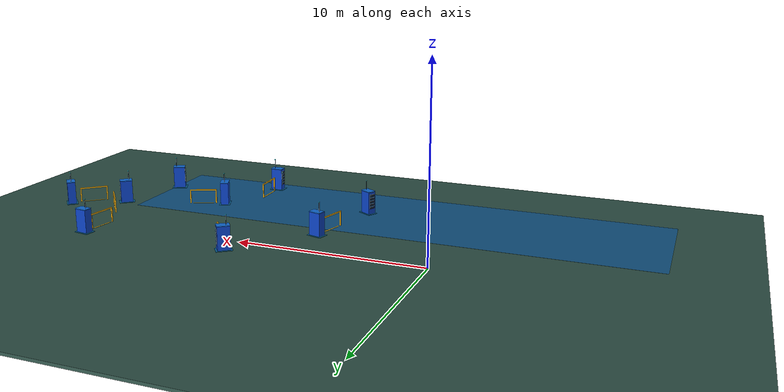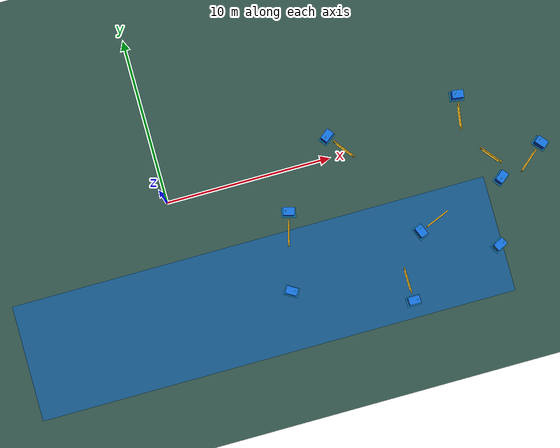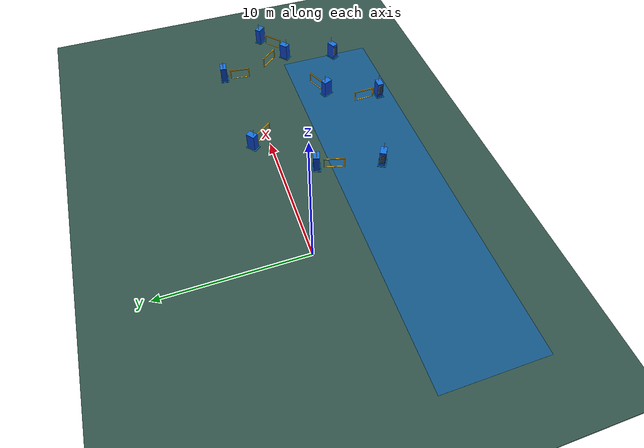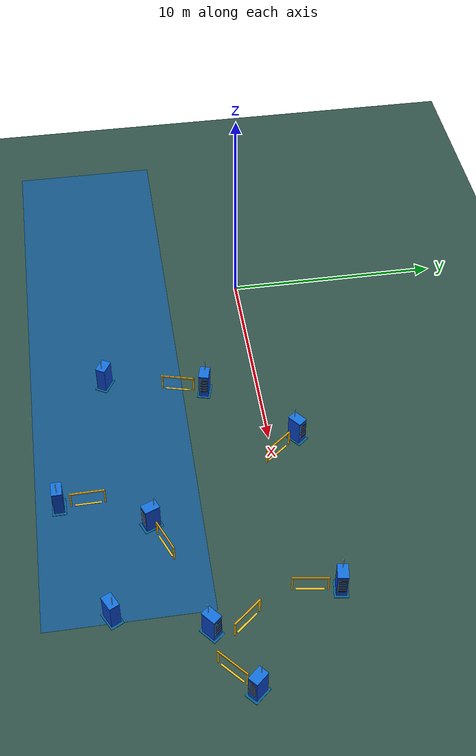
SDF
<sdf version="1.9">
 <world name="monaco">
  <model name="ground">
   <static>true</static>
   <link name="body">
    <visual name="ground">
     <pose>0 0 -0.08 0 0 0</pose>
     <geometry><box><size>100 100 0.15</size></box></geometry>
     <material><ambient>0.20 0.34 0.30 1</ambient><diffuse>0.20 0.34 0.30 1</diffuse></material>
    </visual>
    <collision name="ground_collision">
     <pose>0 0 -0.08 0 0 0</pose>
     <geometry><box><size>100 100 0.15</size></box></geometry>
    </collision>
   </link>
  </model>
  <model name="harbour">
   <static>true</static>
   <pose>4 -7 0 0 0 0</pose>
   <link name="body">
    <visual name="water">
     <pose>0 0 -0.002 0 0 0</pose>
     <geometry><box><size>29 7 0.004</size></box></geometry>
     <material><ambient>0.08 0.35 0.55 1</ambient><diffuse>0.08 0.35 0.55 1</diffuse></material>
    </visual>
   </link>
  </model>
  <model name="checkpoint_03">
   <static>true</static>
   <pose>6.454940298437448 -3.682188998557269 0 0 0 -0.2629336368618341</pose>
   <link name="body">
    <visual name="stripe">
     <pose>0 0 0.016 0 0 0</pose>
     <geometry><box><size>0.08 1.17 0.008</size></box></geometry>
     <material><ambient>1 0.78 0.15 1</ambient><diffuse>1 0.78 0.15 1</diffuse></material>
    </visual>
    <visual name="post_-1">
     <pose>0 -0.73 0.38 0 0 0</pose>
     <geometry><box><size>0.06 0.06 0.76</size></box></geometry>
     <material><ambient>1 0.72 0.06 1</ambient><diffuse>1 0.72 0.06 1</diffuse></material>
    </visual>
    <visual name="post_1">
     <pose>0 0.73 0.38 0 0 0</pose>
     <geometry><box><size>0.06 0.06 0.76</size></box></geometry>
     <material><ambient>1 0.72 0.06 1</ambient><diffuse>1 0.72 0.06 1</diffuse></material>
    </visual>
    <visual name="overhead">
     <pose>0 0 0.79 0 0 0</pose>
     <geometry><box><size>0.06 1.52 0.06</size></box></geometry>
     <material><ambient>1 0.72 0.06 1</ambient><diffuse>1 0.72 0.06 1</diffuse></material>
    </visual>
   </link>
  </model>
  <model name="checkpoint_04">
   <static>true</static>
   <pose>10.935548704453556 0.25721683921350696 0 0 0 0.6659692373791293</pose>
   <link name="body">
    <visual name="stripe">
     <pose>0 0 0.016 0 0 0</pose>
     <geometry><box><size>0.08 1.17 0.008</size></box></geometry>
     <material><ambient>1 0.78 0.15 1</ambient><diffuse>1 0.78 0.15 1</diffuse></material>
    </visual>
    <visual name="post_-1">
     <pose>0 -0.73 0.38 0 0 0</pose>
     <geometry><box><size>0.06 0.06 0.76</size></box></geometry>
     <material><ambient>1 0.72 0.06 1</ambient><diffuse>1 0.72 0.06 1</diffuse></material>
    </visual>
    <visual name="post_1">
     <pose>0 0.73 0.38 0 0 0</pose>
     <geometry><box><size>0.06 0.06 0.76</size></box></geometry>
     <material><ambient>1 0.72 0.06 1</ambient><diffuse>1 0.72 0.06 1</diffuse></material>
    </visual>
    <visual name="overhead">
     <pose>0 0 0.79 0 0 0</pose>
     <geometry><box><size>0.06 1.52 0.06</size></box></geometry>
     <material><ambient>1 0.72 0.06 1</ambient><diffuse>1 0.72 0.06 1</diffuse></material>
    </visual>
   </link>
  </model>
  <model name="checkpoint_05">
   <static>true</static>
   <pose>18.07998499091733 0.31344347166392694 0 0 0 -0.14937406840823475</pose>
   <link name="body">
    <visual name="stripe">
     <pose>0 0 0.016 0 0 0</pose>
     <geometry><box><size>0.08 1.17 0.008</size></box></geometry>
     <material><ambient>1 0.78 0.15 1</ambient><diffuse>1 0.78 0.15 1</diffuse></material>
    </visual>
    <visual name="post_-1">
     <pose>0 -0.73 0.38 0 0 0</pose>
     <geometry><box><size>0.06 0.06 0.76</size></box></geometry>
     <material><ambient>1 0.72 0.06 1</ambient><diffuse>1 0.72 0.06 1</diffuse></material>
    </visual>
    <visual name="post_1">
     <pose>0 0.73 0.38 0 0 0</pose>
     <geometry><box><size>0.06 0.06 0.76</size></box></geometry>
     <material><ambient>1 0.72 0.06 1</ambient><diffuse>1 0.72 0.06 1</diffuse></material>
    </visual>
    <visual name="overhead">
     <pose>0 0 0.79 0 0 0</pose>
     <geometry><box><size>0.06 1.52 0.06</size></box></geometry>
     <material><ambient>1 0.72 0.06 1</ambient><diffuse>1 0.72 0.06 1</diffuse></material>
    </visual>
   </link>
  </model>
  <model name="checkpoint_06">
   <static>true</static>
   <pose>15.15773182204439 -5.211876964290147 0 0 0 -1.181919884196147</pose>
   <link name="body">
    <visual name="stripe">
     <pose>0 0 0.016 0 0 0</pose>
     <geometry><box><size>0.08 1.17 0.008</size></box></geometry>
     <material><ambient>1 0.78 0.15 1</ambient><diffuse>1 0.78 0.15 1</diffuse></material>
    </visual>
    <visual name="post_-1">
     <pose>0 -0.73 0.38 0 0 0</pose>
     <geometry><box><size>0.06 0.06 0.76</size></box></geometry>
     <material><ambient>1 0.72 0.06 1</ambient><diffuse>1 0.72 0.06 1</diffuse></material>
    </visual>
    <visual name="post_1">
     <pose>0 0.73 0.38 0 0 0</pose>
     <geometry><box><size>0.06 0.06 0.76</size></box></geometry>
     <material><ambient>1 0.72 0.06 1</ambient><diffuse>1 0.72 0.06 1</diffuse></material>
    </visual>
    <visual name="overhead">
     <pose>0 0 0.79 0 0 0</pose>
     <geometry><box><size>0.06 1.52 0.06</size></box></geometry>
     <material><ambient>1 0.72 0.06 1</ambient><diffuse>1 0.72 0.06 1</diffuse></material>
    </visual>
   </link>
  </model>
  <model name="checkpoint_07">
   <static>true</static>
   <pose>19.249690984011426 -2.4214309543435344 0 0 0 0.6889243882148643</pose>
   <link name="body">
    <visual name="stripe">
     <pose>0 0 0.016 0 0 0</pose>
     <geometry><box><size>0.08 1.17 0.008</size></box></geometry>
     <material><ambient>1 0.78 0.15 1</ambient><diffuse>1 0.78 0.15 1</diffuse></material>
    </visual>
    <visual name="post_-1">
     <pose>0 -0.73 0.38 0 0 0</pose>
     <geometry><box><size>0.06 0.06 0.76</size></box></geometry>
     <material><ambient>1 0.72 0.06 1</ambient><diffuse>1 0.72 0.06 1</diffuse></material>
    </visual>
    <visual name="post_1">
     <pose>0 0.73 0.38 0 0 0</pose>
     <geometry><box><size>0.06 0.06 0.76</size></box></geometry>
     <material><ambient>1 0.72 0.06 1</ambient><diffuse>1 0.72 0.06 1</diffuse></material>
    </visual>
    <visual name="overhead">
     <pose>0 0 0.79 0 0 0</pose>
     <geometry><box><size>0.06 1.52 0.06</size></box></geometry>
     <material><ambient>1 0.72 0.06 1</ambient><diffuse>1 0.72 0.06 1</diffuse></material>
    </visual>
   </link>
  </model>
  <model name="checkpoint_08">
   <static>true</static>
   <pose>21.326041155660878 -3.318374200235601 0 0 0 -0.8515374187715115</pose>
   <link name="body">
    <visual name="stripe">
     <pose>0 0 0.016 0 0 0</pose>
     <geometry><box><size>0.08 1.17 0.008</size></box></geometry>
     <material><ambient>1 0.78 0.15 1</ambient><diffuse>1 0.78 0.15 1</diffuse></material>
    </visual>
    <visual name="post_-1">
     <pose>0 -0.73 0.38 0 0 0</pose>
     <geometry><box><size>0.06 0.06 0.76</size></box></geometry>
     <material><ambient>1 0.72 0.06 1</ambient><diffuse>1 0.72 0.06 1</diffuse></material>
    </visual>
    <visual name="post_1">
     <pose>0 0.73 0.38 0 0 0</pose>
     <geometry><box><size>0.06 0.06 0.76</size></box></geometry>
     <material><ambient>1 0.72 0.06 1</ambient><diffuse>1 0.72 0.06 1</diffuse></material>
    </visual>
    <visual name="overhead">
     <pose>0 0 0.79 0 0 0</pose>
     <geometry><box><size>0.06 1.52 0.06</size></box></geometry>
     <material><ambient>1 0.72 0.06 1</ambient><diffuse>1 0.72 0.06 1</diffuse></material>
    </visual>
   </link>
  </model>
  <model name="checkpoint_09">
   <static>true</static>
   <pose>12.488786444975142 -8.246013476294056 0 0 0 -3.127607551424901</pose>
   <link name="body">
    <visual name="stripe">
     <pose>0 0 0.016 0 0 0</pose>
     <geometry><box><size>0.08 1.17 0.008</size></box></geometry>
     <material><ambient>1 0.78 0.15 1</ambient><diffuse>1 0.78 0.15 1</diffuse></material>
    </visual>
    <visual name="post_-1">
     <pose>0 -0.73 0.38 0 0 0</pose>
     <geometry><box><size>0.06 0.06 0.76</size></box></geometry>
     <material><ambient>1 0.72 0.06 1</ambient><diffuse>1 0.72 0.06 1</diffuse></material>
    </visual>
    <visual name="post_1">
     <pose>0 0.73 0.38 0 0 0</pose>
     <geometry><box><size>0.06 0.06 0.76</size></box></geometry>
     <material><ambient>1 0.72 0.06 1</ambient><diffuse>1 0.72 0.06 1</diffuse></material>
    </visual>
    <visual name="overhead">
     <pose>0 0 0.79 0 0 0</pose>
     <geometry><box><size>0.06 1.52 0.06</size></box></geometry>
     <material><ambient>1 0.72 0.06 1</ambient><diffuse>1 0.72 0.06 1</diffuse></material>
    </visual>
   </link>
  </model>
  <model name="edge_03">
   <static>true</static>
   <pose>6.779833396990761 -2.475149448868682 0 0 0 -0.2629336368618341</pose>
   <link name="body">
    <collision name="chassis_collision">
     <pose>0 0 0.14 0 0 0</pose>
     <geometry><box><size>0.64 0.32 0.13</size></box></geometry>
    </collision>
    <visual name="parking_bay">
     <pose>0 0 0.012 0 0 0</pose>
     <geometry><box><size>0.86 0.60 0.025</size></box></geometry>
     <material><ambient>0.04 0.40 0.60 1</ambient><diffuse>0.04 0.40 0.60 1</diffuse></material>
    </visual>
    <visual name="server_cabinet">
     <pose>0 0 0.65 0 0 0</pose>
     <geometry><box><size>0.66 0.44 1.25</size></box></geometry>
     <material><ambient>0.035 0.24 0.72 1</ambient><diffuse>0.035 0.24 0.72 1</diffuse></material>
    </visual>
    <visual name="cabinet_top">
     <pose>0 0 1.285 0 0 0</pose>
     <geometry><box><size>0.68 0.46 0.035</size></box></geometry>
     <material><ambient>0.08 0.46 0.90 1</ambient><diffuse>0.08 0.46 0.90 1</diffuse></material>
    </visual>
    <visual name="front_panel">
     <pose>0.337 0 0.73 0 0 0</pose>
     <geometry><box><size>0.014 0.34 0.82</size></box></geometry>
     <material><ambient>0.025 0.075 0.14 1</ambient><diffuse>0.025 0.075 0.14 1</diffuse></material>
    </visual>
    <visual name="rack_slot_0">
     <pose>0.347 0 0.47 0 0 0</pose>
     <geometry><box><size>0.012 0.29 0.045</size></box></geometry>
     <material><ambient>0.11 0.38 0.62 1</ambient><diffuse>0.11 0.38 0.62 1</diffuse></material>
    </visual>
    <visual name="rack_slot_1">
     <pose>0.347 0 0.64 0 0 0</pose>
     <geometry><box><size>0.012 0.29 0.045</size></box></geometry>
     <material><ambient>0.11 0.38 0.62 1</ambient><diffuse>0.11 0.38 0.62 1</diffuse></material>
    </visual>
    <visual name="rack_slot_2">
     <pose>0.347 0 0.81 0 0 0</pose>
     <geometry><box><size>0.012 0.29 0.045</size></box></geometry>
     <material><ambient>0.11 0.38 0.62 1</ambient><diffuse>0.11 0.38 0.62 1</diffuse></material>
    </visual>
    <visual name="rack_slot_3">
     <pose>0.347 0 0.98 0 0 0</pose>
     <geometry><box><size>0.012 0.29 0.045</size></box></geometry>
     <material><ambient>0.11 0.38 0.62 1</ambient><diffuse>0.11 0.38 0.62 1</diffuse></material>
    </visual>
    <visual name="status_light">
     <pose>0.347 -0.10 1.08 0 0 0</pose>
     <geometry><box><size>0.015 0.035 0.035</size></box></geometry>
     <material><ambient>0.10 0.95 0.80 1</ambient><diffuse>0.10 0.95 0.80 1</diffuse></material>
    </visual>
    <visual name="antenna">
     <pose>-0.17 0 1.55 0 0 0</pose>
     <geometry><cylinder><radius>0.018</radius><length>0.5</length></cylinder></geometry>
     <material><ambient>0.05 0.10 0.17 1</ambient><diffuse>0.05 0.10 0.17 1</diffuse></material>
    </visual>
    <visual name="antenna_tip">
     <pose>-0.17 0 1.81 0 0 0</pose>
     <geometry><cylinder><radius>0.027</radius><length>0.035</length></cylinder></geometry>
     <material><ambient>0.12 0.90 0.96 1</ambient><diffuse>0.12 0.90 0.96 1</diffuse></material>
    </visual>
   </link>
  </model>
  <model name="edge_04">
   <static>true</static>
   <pose>10.163271764538656 1.2401147627415203 0 0 0 0.6659692373791293</pose>
   <link name="body">
    <collision name="chassis_collision">
     <pose>0 0 0.14 0 0 0</pose>
     <geometry><box><size>0.64 0.32 0.13</size></box></geometry>
    </collision>
    <visual name="parking_bay">
     <pose>0 0 0.012 0 0 0</pose>
     <geometry><box><size>0.86 0.60 0.025</size></box></geometry>
     <material><ambient>0.04 0.40 0.60 1</ambient><diffuse>0.04 0.40 0.60 1</diffuse></material>
    </visual>
    <visual name="server_cabinet">
     <pose>0 0 0.65 0 0 0</pose>
     <geometry><box><size>0.66 0.44 1.25</size></box></geometry>
     <material><ambient>0.035 0.24 0.72 1</ambient><diffuse>0.035 0.24 0.72 1</diffuse></material>
    </visual>
    <visual name="cabinet_top">
     <pose>0 0 1.285 0 0 0</pose>
     <geometry><box><size>0.68 0.46 0.035</size></box></geometry>
     <material><ambient>0.08 0.46 0.90 1</ambient><diffuse>0.08 0.46 0.90 1</diffuse></material>
    </visual>
    <visual name="front_panel">
     <pose>0.337 0 0.73 0 0 0</pose>
     <geometry><box><size>0.014 0.34 0.82</size></box></geometry>
     <material><ambient>0.025 0.075 0.14 1</ambient><diffuse>0.025 0.075 0.14 1</diffuse></material>
    </visual>
    <visual name="rack_slot_0">
     <pose>0.347 0 0.47 0 0 0</pose>
     <geometry><box><size>0.012 0.29 0.045</size></box></geometry>
     <material><ambient>0.11 0.38 0.62 1</ambient><diffuse>0.11 0.38 0.62 1</diffuse></material>
    </visual>
    <visual name="rack_slot_1">
     <pose>0.347 0 0.64 0 0 0</pose>
     <geometry><box><size>0.012 0.29 0.045</size></box></geometry>
     <material><ambient>0.11 0.38 0.62 1</ambient><diffuse>0.11 0.38 0.62 1</diffuse></material>
    </visual>
    <visual name="rack_slot_2">
     <pose>0.347 0 0.81 0 0 0</pose>
     <geometry><box><size>0.012 0.29 0.045</size></box></geometry>
     <material><ambient>0.11 0.38 0.62 1</ambient><diffuse>0.11 0.38 0.62 1</diffuse></material>
    </visual>
    <visual name="rack_slot_3">
     <pose>0.347 0 0.98 0 0 0</pose>
     <geometry><box><size>0.012 0.29 0.045</size></box></geometry>
     <material><ambient>0.11 0.38 0.62 1</ambient><diffuse>0.11 0.38 0.62 1</diffuse></material>
    </visual>
    <visual name="status_light">
     <pose>0.347 -0.10 1.08 0 0 0</pose>
     <geometry><box><size>0.015 0.035 0.035</size></box></geometry>
     <material><ambient>0.10 0.95 0.80 1</ambient><diffuse>0.10 0.95 0.80 1</diffuse></material>
    </visual>
    <visual name="antenna">
     <pose>-0.17 0 1.55 0 0 0</pose>
     <geometry><cylinder><radius>0.018</radius><length>0.5</length></cylinder></geometry>
     <material><ambient>0.05 0.10 0.17 1</ambient><diffuse>0.05 0.10 0.17 1</diffuse></material>
    </visual>
    <visual name="antenna_tip">
     <pose>-0.17 0 1.81 0 0 0</pose>
     <geometry><cylinder><radius>0.027</radius><length>0.035</length></cylinder></geometry>
     <material><ambient>0.12 0.90 0.96 1</ambient><diffuse>0.12 0.90 0.96 1</diffuse></material>
    </visual>
   </link>
  </model>
  <model name="edge_05">
   <static>true</static>
   <pose>18.266008991148702 1.5495239995171561 0 0 0 -0.14937406840823475</pose>
   <link name="body">
    <collision name="chassis_collision">
     <pose>0 0 0.14 0 0 0</pose>
     <geometry><box><size>0.64 0.32 0.13</size></box></geometry>
    </collision>
    <visual name="parking_bay">
     <pose>0 0 0.012 0 0 0</pose>
     <geometry><box><size>0.86 0.60 0.025</size></box></geometry>
     <material><ambient>0.04 0.40 0.60 1</ambient><diffuse>0.04 0.40 0.60 1</diffuse></material>
    </visual>
    <visual name="server_cabinet">
     <pose>0 0 0.65 0 0 0</pose>
     <geometry><box><size>0.66 0.44 1.25</size></box></geometry>
     <material><ambient>0.035 0.24 0.72 1</ambient><diffuse>0.035 0.24 0.72 1</diffuse></material>
    </visual>
    <visual name="cabinet_top">
     <pose>0 0 1.285 0 0 0</pose>
     <geometry><box><size>0.68 0.46 0.035</size></box></geometry>
     <material><ambient>0.08 0.46 0.90 1</ambient><diffuse>0.08 0.46 0.90 1</diffuse></material>
    </visual>
    <visual name="front_panel">
     <pose>0.337 0 0.73 0 0 0</pose>
     <geometry><box><size>0.014 0.34 0.82</size></box></geometry>
     <material><ambient>0.025 0.075 0.14 1</ambient><diffuse>0.025 0.075 0.14 1</diffuse></material>
    </visual>
    <visual name="rack_slot_0">
     <pose>0.347 0 0.47 0 0 0</pose>
     <geometry><box><size>0.012 0.29 0.045</size></box></geometry>
     <material><ambient>0.11 0.38 0.62 1</ambient><diffuse>0.11 0.38 0.62 1</diffuse></material>
    </visual>
    <visual name="rack_slot_1">
     <pose>0.347 0 0.64 0 0 0</pose>
     <geometry><box><size>0.012 0.29 0.045</size></box></geometry>
     <material><ambient>0.11 0.38 0.62 1</ambient><diffuse>0.11 0.38 0.62 1</diffuse></material>
    </visual>
    <visual name="rack_slot_2">
     <pose>0.347 0 0.81 0 0 0</pose>
     <geometry><box><size>0.012 0.29 0.045</size></box></geometry>
     <material><ambient>0.11 0.38 0.62 1</ambient><diffuse>0.11 0.38 0.62 1</diffuse></material>
    </visual>
    <visual name="rack_slot_3">
     <pose>0.347 0 0.98 0 0 0</pose>
     <geometry><box><size>0.012 0.29 0.045</size></box></geometry>
     <material><ambient>0.11 0.38 0.62 1</ambient><diffuse>0.11 0.38 0.62 1</diffuse></material>
    </visual>
    <visual name="status_light">
     <pose>0.347 -0.10 1.08 0 0 0</pose>
     <geometry><box><size>0.015 0.035 0.035</size></box></geometry>
     <material><ambient>0.10 0.95 0.80 1</ambient><diffuse>0.10 0.95 0.80 1</diffuse></material>
    </visual>
    <visual name="antenna">
     <pose>-0.17 0 1.55 0 0 0</pose>
     <geometry><cylinder><radius>0.018</radius><length>0.5</length></cylinder></geometry>
     <material><ambient>0.05 0.10 0.17 1</ambient><diffuse>0.05 0.10 0.17 1</diffuse></material>
    </visual>
    <visual name="antenna_tip">
     <pose>-0.17 0 1.81 0 0 0</pose>
     <geometry><cylinder><radius>0.027</radius><length>0.035</length></cylinder></geometry>
     <material><ambient>0.12 0.90 0.96 1</ambient><diffuse>0.12 0.90 0.96 1</diffuse></material>
    </visual>
   </link>
  </model>
  <model name="edge_06">
   <static>true</static>
   <pose>14.001062272692813 -5.685813197978624 0 0 0 -1.181919884196147</pose>
   <link name="body">
    <collision name="chassis_collision">
     <pose>0 0 0.14 0 0 0</pose>
     <geometry><box><size>0.64 0.32 0.13</size></box></geometry>
    </collision>
    <visual name="parking_bay">
     <pose>0 0 0.012 0 0 0</pose>
     <geometry><box><size>0.86 0.60 0.025</size></box></geometry>
     <material><ambient>0.04 0.40 0.60 1</ambient><diffuse>0.04 0.40 0.60 1</diffuse></material>
    </visual>
    <visual name="server_cabinet">
     <pose>0 0 0.65 0 0 0</pose>
     <geometry><box><size>0.66 0.44 1.25</size></box></geometry>
     <material><ambient>0.035 0.24 0.72 1</ambient><diffuse>0.035 0.24 0.72 1</diffuse></material>
    </visual>
    <visual name="cabinet_top">
     <pose>0 0 1.285 0 0 0</pose>
     <geometry><box><size>0.68 0.46 0.035</size></box></geometry>
     <material><ambient>0.08 0.46 0.90 1</ambient><diffuse>0.08 0.46 0.90 1</diffuse></material>
    </visual>
    <visual name="front_panel">
     <pose>0.337 0 0.73 0 0 0</pose>
     <geometry><box><size>0.014 0.34 0.82</size></box></geometry>
     <material><ambient>0.025 0.075 0.14 1</ambient><diffuse>0.025 0.075 0.14 1</diffuse></material>
    </visual>
    <visual name="rack_slot_0">
     <pose>0.347 0 0.47 0 0 0</pose>
     <geometry><box><size>0.012 0.29 0.045</size></box></geometry>
     <material><ambient>0.11 0.38 0.62 1</ambient><diffuse>0.11 0.38 0.62 1</diffuse></material>
    </visual>
    <visual name="rack_slot_1">
     <pose>0.347 0 0.64 0 0 0</pose>
     <geometry><box><size>0.012 0.29 0.045</size></box></geometry>
     <material><ambient>0.11 0.38 0.62 1</ambient><diffuse>0.11 0.38 0.62 1</diffuse></material>
    </visual>
    <visual name="rack_slot_2">
     <pose>0.347 0 0.81 0 0 0</pose>
     <geometry><box><size>0.012 0.29 0.045</size></box></geometry>
     <material><ambient>0.11 0.38 0.62 1</ambient><diffuse>0.11 0.38 0.62 1</diffuse></material>
    </visual>
    <visual name="rack_slot_3">
     <pose>0.347 0 0.98 0 0 0</pose>
     <geometry><box><size>0.012 0.29 0.045</size></box></geometry>
     <material><ambient>0.11 0.38 0.62 1</ambient><diffuse>0.11 0.38 0.62 1</diffuse></material>
    </visual>
    <visual name="status_light">
     <pose>0.347 -0.10 1.08 0 0 0</pose>
     <geometry><box><size>0.015 0.035 0.035</size></box></geometry>
     <material><ambient>0.10 0.95 0.80 1</ambient><diffuse>0.10 0.95 0.80 1</diffuse></material>
    </visual>
    <visual name="antenna">
     <pose>-0.17 0 1.55 0 0 0</pose>
     <geometry><cylinder><radius>0.018</radius><length>0.5</length></cylinder></geometry>
     <material><ambient>0.05 0.10 0.17 1</ambient><diffuse>0.05 0.10 0.17 1</diffuse></material>
    </visual>
    <visual name="antenna_tip">
     <pose>-0.17 0 1.81 0 0 0</pose>
     <geometry><cylinder><radius>0.027</radius><length>0.035</length></cylinder></geometry>
     <material><ambient>0.12 0.90 0.96 1</ambient><diffuse>0.12 0.90 0.96 1</diffuse></material>
    </visual>
   </link>
  </model>
  <model name="edge_07">
   <static>true</static>
   <pose>19.465377373375016 -3.8631241885106706 0 0 0 0.6889243882148643</pose>
   <link name="body">
    <collision name="chassis_collision">
     <pose>0 0 0.14 0 0 0</pose>
     <geometry><box><size>0.64 0.32 0.13</size></box></geometry>
    </collision>
    <visual name="parking_bay">
     <pose>0 0 0.012 0 0 0</pose>
     <geometry><box><size>0.86 0.60 0.025</size></box></geometry>
     <material><ambient>0.04 0.40 0.60 1</ambient><diffuse>0.04 0.40 0.60 1</diffuse></material>
    </visual>
    <visual name="server_cabinet">
     <pose>0 0 0.65 0 0 0</pose>
     <geometry><box><size>0.66 0.44 1.25</size></box></geometry>
     <material><ambient>0.035 0.24 0.72 1</ambient><diffuse>0.035 0.24 0.72 1</diffuse></material>
    </visual>
    <visual name="cabinet_top">
     <pose>0 0 1.285 0 0 0</pose>
     <geometry><box><size>0.68 0.46 0.035</size></box></geometry>
     <material><ambient>0.08 0.46 0.90 1</ambient><diffuse>0.08 0.46 0.90 1</diffuse></material>
    </visual>
    <visual name="front_panel">
     <pose>0.337 0 0.73 0 0 0</pose>
     <geometry><box><size>0.014 0.34 0.82</size></box></geometry>
     <material><ambient>0.025 0.075 0.14 1</ambient><diffuse>0.025 0.075 0.14 1</diffuse></material>
    </visual>
    <visual name="rack_slot_0">
     <pose>0.347 0 0.47 0 0 0</pose>
     <geometry><box><size>0.012 0.29 0.045</size></box></geometry>
     <material><ambient>0.11 0.38 0.62 1</ambient><diffuse>0.11 0.38 0.62 1</diffuse></material>
    </visual>
    <visual name="rack_slot_1">
     <pose>0.347 0 0.64 0 0 0</pose>
     <geometry><box><size>0.012 0.29 0.045</size></box></geometry>
     <material><ambient>0.11 0.38 0.62 1</ambient><diffuse>0.11 0.38 0.62 1</diffuse></material>
    </visual>
    <visual name="rack_slot_2">
     <pose>0.347 0 0.81 0 0 0</pose>
     <geometry><box><size>0.012 0.29 0.045</size></box></geometry>
     <material><ambient>0.11 0.38 0.62 1</ambient><diffuse>0.11 0.38 0.62 1</diffuse></material>
    </visual>
    <visual name="rack_slot_3">
     <pose>0.347 0 0.98 0 0 0</pose>
     <geometry><box><size>0.012 0.29 0.045</size></box></geometry>
     <material><ambient>0.11 0.38 0.62 1</ambient><diffuse>0.11 0.38 0.62 1</diffuse></material>
    </visual>
    <visual name="status_light">
     <pose>0.347 -0.10 1.08 0 0 0</pose>
     <geometry><box><size>0.015 0.035 0.035</size></box></geometry>
     <material><ambient>0.10 0.95 0.80 1</ambient><diffuse>0.10 0.95 0.80 1</diffuse></material>
    </visual>
    <visual name="antenna">
     <pose>-0.17 0 1.55 0 0 0</pose>
     <geometry><cylinder><radius>0.018</radius><length>0.5</length></cylinder></geometry>
     <material><ambient>0.05 0.10 0.17 1</ambient><diffuse>0.05 0.10 0.17 1</diffuse></material>
    </visual>
    <visual name="antenna_tip">
     <pose>-0.17 0 1.81 0 0 0</pose>
     <geometry><cylinder><radius>0.027</radius><length>0.035</length></cylinder></geometry>
     <material><ambient>0.12 0.90 0.96 1</ambient><diffuse>0.12 0.90 0.96 1</diffuse></material>
    </visual>
   </link>
  </model>
  <model name="edge_08">
   <static>true</static>
   <pose>22.266408889828018 -2.494840033040724 0 0 0 -0.8515374187715115</pose>
   <link name="body">
    <collision name="chassis_collision">
     <pose>0 0 0.14 0 0 0</pose>
     <geometry><box><size>0.64 0.32 0.13</size></box></geometry>
    </collision>
    <visual name="parking_bay">
     <pose>0 0 0.012 0 0 0</pose>
     <geometry><box><size>0.86 0.60 0.025</size></box></geometry>
     <material><ambient>0.04 0.40 0.60 1</ambient><diffuse>0.04 0.40 0.60 1</diffuse></material>
    </visual>
    <visual name="server_cabinet">
     <pose>0 0 0.65 0 0 0</pose>
     <geometry><box><size>0.66 0.44 1.25</size></box></geometry>
     <material><ambient>0.035 0.24 0.72 1</ambient><diffuse>0.035 0.24 0.72 1</diffuse></material>
    </visual>
    <visual name="cabinet_top">
     <pose>0 0 1.285 0 0 0</pose>
     <geometry><box><size>0.68 0.46 0.035</size></box></geometry>
     <material><ambient>0.08 0.46 0.90 1</ambient><diffuse>0.08 0.46 0.90 1</diffuse></material>
    </visual>
    <visual name="front_panel">
     <pose>0.337 0 0.73 0 0 0</pose>
     <geometry><box><size>0.014 0.34 0.82</size></box></geometry>
     <material><ambient>0.025 0.075 0.14 1</ambient><diffuse>0.025 0.075 0.14 1</diffuse></material>
    </visual>
    <visual name="rack_slot_0">
     <pose>0.347 0 0.47 0 0 0</pose>
     <geometry><box><size>0.012 0.29 0.045</size></box></geometry>
     <material><ambient>0.11 0.38 0.62 1</ambient><diffuse>0.11 0.38 0.62 1</diffuse></material>
    </visual>
    <visual name="rack_slot_1">
     <pose>0.347 0 0.64 0 0 0</pose>
     <geometry><box><size>0.012 0.29 0.045</size></box></geometry>
     <material><ambient>0.11 0.38 0.62 1</ambient><diffuse>0.11 0.38 0.62 1</diffuse></material>
    </visual>
    <visual name="rack_slot_2">
     <pose>0.347 0 0.81 0 0 0</pose>
     <geometry><box><size>0.012 0.29 0.045</size></box></geometry>
     <material><ambient>0.11 0.38 0.62 1</ambient><diffuse>0.11 0.38 0.62 1</diffuse></material>
    </visual>
    <visual name="rack_slot_3">
     <pose>0.347 0 0.98 0 0 0</pose>
     <geometry><box><size>0.012 0.29 0.045</size></box></geometry>
     <material><ambient>0.11 0.38 0.62 1</ambient><diffuse>0.11 0.38 0.62 1</diffuse></material>
    </visual>
    <visual name="status_light">
     <pose>0.347 -0.10 1.08 0 0 0</pose>
     <geometry><box><size>0.015 0.035 0.035</size></box></geometry>
     <material><ambient>0.10 0.95 0.80 1</ambient><diffuse>0.10 0.95 0.80 1</diffuse></material>
    </visual>
    <visual name="antenna">
     <pose>-0.17 0 1.55 0 0 0</pose>
     <geometry><cylinder><radius>0.018</radius><length>0.5</length></cylinder></geometry>
     <material><ambient>0.05 0.10 0.17 1</ambient><diffuse>0.05 0.10 0.17 1</diffuse></material>
    </visual>
    <visual name="antenna_tip">
     <pose>-0.17 0 1.81 0 0 0</pose>
     <geometry><cylinder><radius>0.027</radius><length>0.035</length></cylinder></geometry>
     <material><ambient>0.12 0.90 0.96 1</ambient><diffuse>0.12 0.90 0.96 1</diffuse></material>
    </visual>
   </link>
  </model>
  <model name="edge_09">
   <static>true</static>
   <pose>12.506267252843207 -9.495891238859771 0 0 0 -3.127607551424901</pose>
   <link name="body">
    <collision name="chassis_collision">
     <pose>0 0 0.14 0 0 0</pose>
     <geometry><box><size>0.64 0.32 0.13</size></box></geometry>
    </collision>
    <visual name="parking_bay">
     <pose>0 0 0.012 0 0 0</pose>
     <geometry><box><size>0.86 0.60 0.025</size></box></geometry>
     <material><ambient>0.04 0.40 0.60 1</ambient><diffuse>0.04 0.40 0.60 1</diffuse></material>
    </visual>
    <visual name="server_cabinet">
     <pose>0 0 0.65 0 0 0</pose>
     <geometry><box><size>0.66 0.44 1.25</size></box></geometry>
     <material><ambient>0.035 0.24 0.72 1</ambient><diffuse>0.035 0.24 0.72 1</diffuse></material>
    </visual>
    <visual name="cabinet_top">
     <pose>0 0 1.285 0 0 0</pose>
     <geometry><box><size>0.68 0.46 0.035</size></box></geometry>
     <material><ambient>0.08 0.46 0.90 1</ambient><diffuse>0.08 0.46 0.90 1</diffuse></material>
    </visual>
    <visual name="front_panel">
     <pose>0.337 0 0.73 0 0 0</pose>
     <geometry><box><size>0.014 0.34 0.82</size></box></geometry>
     <material><ambient>0.025 0.075 0.14 1</ambient><diffuse>0.025 0.075 0.14 1</diffuse></material>
    </visual>
    <visual name="rack_slot_0">
     <pose>0.347 0 0.47 0 0 0</pose>
     <geometry><box><size>0.012 0.29 0.045</size></box></geometry>
     <material><ambient>0.11 0.38 0.62 1</ambient><diffuse>0.11 0.38 0.62 1</diffuse></material>
    </visual>
    <visual name="rack_slot_1">
     <pose>0.347 0 0.64 0 0 0</pose>
     <geometry><box><size>0.012 0.29 0.045</size></box></geometry>
     <material><ambient>0.11 0.38 0.62 1</ambient><diffuse>0.11 0.38 0.62 1</diffuse></material>
    </visual>
    <visual name="rack_slot_2">
     <pose>0.347 0 0.81 0 0 0</pose>
     <geometry><box><size>0.012 0.29 0.045</size></box></geometry>
     <material><ambient>0.11 0.38 0.62 1</ambient><diffuse>0.11 0.38 0.62 1</diffuse></material>
    </visual>
    <visual name="rack_slot_3">
     <pose>0.347 0 0.98 0 0 0</pose>
     <geometry><box><size>0.012 0.29 0.045</size></box></geometry>
     <material><ambient>0.11 0.38 0.62 1</ambient><diffuse>0.11 0.38 0.62 1</diffuse></material>
    </visual>
    <visual name="status_light">
     <pose>0.347 -0.10 1.08 0 0 0</pose>
     <geometry><box><size>0.015 0.035 0.035</size></box></geometry>
     <material><ambient>0.10 0.95 0.80 1</ambient><diffuse>0.10 0.95 0.80 1</diffuse></material>
    </visual>
    <visual name="antenna">
     <pose>-0.17 0 1.55 0 0 0</pose>
     <geometry><cylinder><radius>0.018</radius><length>0.5</length></cylinder></geometry>
     <material><ambient>0.05 0.10 0.17 1</ambient><diffuse>0.05 0.10 0.17 1</diffuse></material>
    </visual>
    <visual name="antenna_tip">
     <pose>-0.17 0 1.81 0 0 0</pose>
     <geometry><cylinder><radius>0.027</radius><length>0.035</length></cylinder></geometry>
     <material><ambient>0.12 0.90 0.96 1</ambient><diffuse>0.12 0.90 0.96 1</diffuse></material>
    </visual>
   </link>
  </model>
  <model name="edge_fill_02">
   <static>true</static>
   <pose>18.2811445155 -7.6731197475 0 0 0 -2.67610342604</pose>
   <link name="body">
    <collision name="chassis_collision">
     <pose>0 0 0.14 0 0 0</pose>
     <geometry><box><size>0.64 0.32 0.13</size></box></geometry>
    </collision>
    <visual name="parking_bay">
     <pose>0 0 0.012 0 0 0</pose>
     <geometry><box><size>0.86 0.60 0.025</size></box></geometry>
     <material><ambient>0.04 0.40 0.60 1</ambient><diffuse>0.04 0.40 0.60 1</diffuse></material>
    </visual>
    <visual name="server_cabinet">
     <pose>0 0 0.65 0 0 0</pose>
     <geometry><box><size>0.66 0.44 1.25</size></box></geometry>
     <material><ambient>0.035 0.24 0.72 1</ambient><diffuse>0.035 0.24 0.72 1</diffuse></material>
    </visual>
    <visual name="cabinet_top">
     <pose>0 0 1.285 0 0 0</pose>
     <geometry><box><size>0.68 0.46 0.035</size></box></geometry>
     <material><ambient>0.08 0.46 0.90 1</ambient><diffuse>0.08 0.46 0.90 1</diffuse></material>
    </visual>
    <visual name="front_panel">
     <pose>0.337 0 0.73 0 0 0</pose>
     <geometry><box><size>0.014 0.34 0.82</size></box></geometry>
     <material><ambient>0.025 0.075 0.14 1</ambient><diffuse>0.025 0.075 0.14 1</diffuse></material>
    </visual>
    <visual name="rack_slot_0">
     <pose>0.347 0 0.47 0 0 0</pose>
     <geometry><box><size>0.012 0.29 0.045</size></box></geometry>
     <material><ambient>0.11 0.38 0.62 1</ambient><diffuse>0.11 0.38 0.62 1</diffuse></material>
    </visual>
    <visual name="rack_slot_1">
     <pose>0.347 0 0.64 0 0 0</pose>
     <geometry><box><size>0.012 0.29 0.045</size></box></geometry>
     <material><ambient>0.11 0.38 0.62 1</ambient><diffuse>0.11 0.38 0.62 1</diffuse></material>
    </visual>
    <visual name="rack_slot_2">
     <pose>0.347 0 0.81 0 0 0</pose>
     <geometry><box><size>0.012 0.29 0.045</size></box></geometry>
     <material><ambient>0.11 0.38 0.62 1</ambient><diffuse>0.11 0.38 0.62 1</diffuse></material>
    </visual>
    <visual name="rack_slot_3">
     <pose>0.347 0 0.98 0 0 0</pose>
     <geometry><box><size>0.012 0.29 0.045</size></box></geometry>
     <material><ambient>0.11 0.38 0.62 1</ambient><diffuse>0.11 0.38 0.62 1</diffuse></material>
    </visual>
    <visual name="status_light">
     <pose>0.347 -0.10 1.08 0 0 0</pose>
     <geometry><box><size>0.015 0.035 0.035</size></box></geometry>
     <material><ambient>0.10 0.95 0.80 1</ambient><diffuse>0.10 0.95 0.80 1</diffuse></material>
    </visual>
    <visual name="antenna">
     <pose>-0.17 0 1.55 0 0 0</pose>
     <geometry><cylinder><radius>0.018</radius><length>0.5</length></cylinder></geometry>
     <material><ambient>0.05 0.10 0.17 1</ambient><diffuse>0.05 0.10 0.17 1</diffuse></material>
    </visual>
    <visual name="antenna_tip">
     <pose>-0.17 0 1.81 0 0 0</pose>
     <geometry><cylinder><radius>0.027</radius><length>0.035</length></cylinder></geometry>
     <material><ambient>0.12 0.90 0.96 1</ambient><diffuse>0.12 0.90 0.96 1</diffuse></material>
    </visual>
   </link>
  </model>
  <model name="edge_fill_03">
   <static>true</static>
   <pose>5.70120229891 -7.03769837055 0 0 0 2.60954572797</pose>
   <link name="body">
    <collision name="chassis_collision">
     <pose>0 0 0.14 0 0 0</pose>
     <geometry><box><size>0.64 0.32 0.13</size></box></geometry>
    </collision>
    <visual name="parking_bay">
     <pose>0 0 0.012 0 0 0</pose>
     <geometry><box><size>0.86 0.60 0.025</size></box></geometry>
     <material><ambient>0.04 0.40 0.60 1</ambient><diffuse>0.04 0.40 0.60 1</diffuse></material>
    </visual>
    <visual name="server_cabinet">
     <pose>0 0 0.65 0 0 0</pose>
     <geometry><box><size>0.66 0.44 1.25</size></box></geometry>
     <material><ambient>0.035 0.24 0.72 1</ambient><diffuse>0.035 0.24 0.72 1</diffuse></material>
    </visual>
    <visual name="cabinet_top">
     <pose>0 0 1.285 0 0 0</pose>
     <geometry><box><size>0.68 0.46 0.035</size></box></geometry>
     <material><ambient>0.08 0.46 0.90 1</ambient><diffuse>0.08 0.46 0.90 1</diffuse></material>
    </visual>
    <visual name="front_panel">
     <pose>0.337 0 0.73 0 0 0</pose>
     <geometry><box><size>0.014 0.34 0.82</size></box></geometry>
     <material><ambient>0.025 0.075 0.14 1</ambient><diffuse>0.025 0.075 0.14 1</diffuse></material>
    </visual>
    <visual name="rack_slot_0">
     <pose>0.347 0 0.47 0 0 0</pose>
     <geometry><box><size>0.012 0.29 0.045</size></box></geometry>
     <material><ambient>0.11 0.38 0.62 1</ambient><diffuse>0.11 0.38 0.62 1</diffuse></material>
    </visual>
    <visual name="rack_slot_1">
     <pose>0.347 0 0.64 0 0 0</pose>
     <geometry><box><size>0.012 0.29 0.045</size></box></geometry>
     <material><ambient>0.11 0.38 0.62 1</ambient><diffuse>0.11 0.38 0.62 1</diffuse></material>
    </visual>
    <visual name="rack_slot_2">
     <pose>0.347 0 0.81 0 0 0</pose>
     <geometry><box><size>0.012 0.29 0.045</size></box></geometry>
     <material><ambient>0.11 0.38 0.62 1</ambient><diffuse>0.11 0.38 0.62 1</diffuse></material>
    </visual>
    <visual name="rack_slot_3">
     <pose>0.347 0 0.98 0 0 0</pose>
     <geometry><box><size>0.012 0.29 0.045</size></box></geometry>
     <material><ambient>0.11 0.38 0.62 1</ambient><diffuse>0.11 0.38 0.62 1</diffuse></material>
    </visual>
    <visual name="status_light">
     <pose>0.347 -0.10 1.08 0 0 0</pose>
     <geometry><box><size>0.015 0.035 0.035</size></box></geometry>
     <material><ambient>0.10 0.95 0.80 1</ambient><diffuse>0.10 0.95 0.80 1</diffuse></material>
    </visual>
    <visual name="antenna">
     <pose>-0.17 0 1.55 0 0 0</pose>
     <geometry><cylinder><radius>0.018</radius><length>0.5</length></cylinder></geometry>
     <material><ambient>0.05 0.10 0.17 1</ambient><diffuse>0.05 0.10 0.17 1</diffuse></material>
    </visual>
    <visual name="antenna_tip">
     <pose>-0.17 0 1.81 0 0 0</pose>
     <geometry><cylinder><radius>0.027</radius><length>0.035</length></cylinder></geometry>
     <material><ambient>0.12 0.90 0.96 1</ambient><diffuse>0.12 0.90 0.96 1</diffuse></material>
    </visual>
   </link>
  </model>
 </world>
</sdf>
